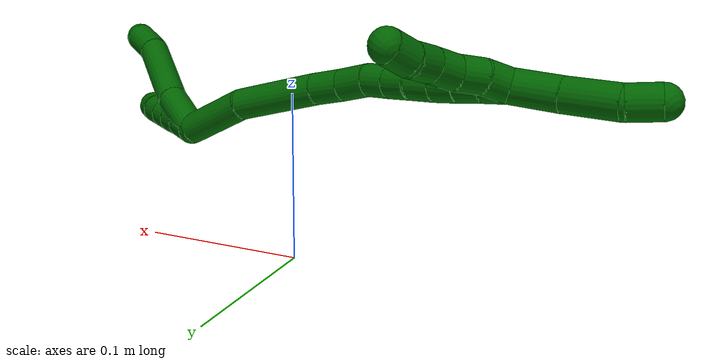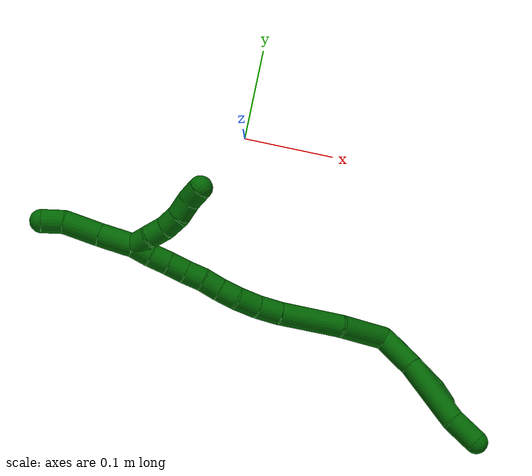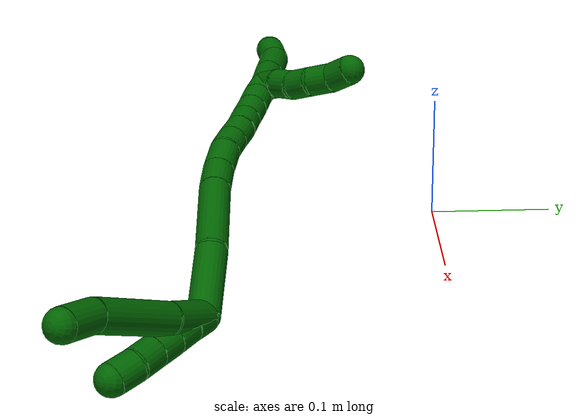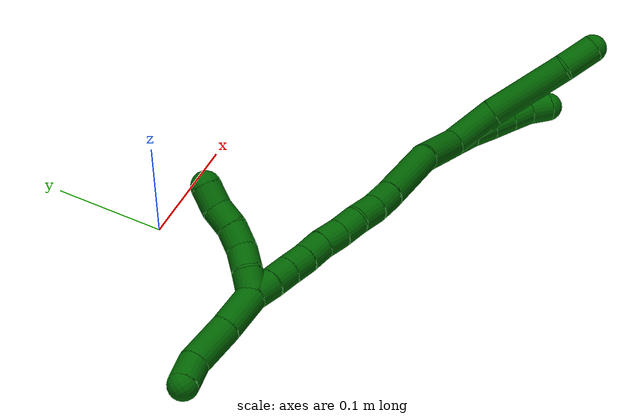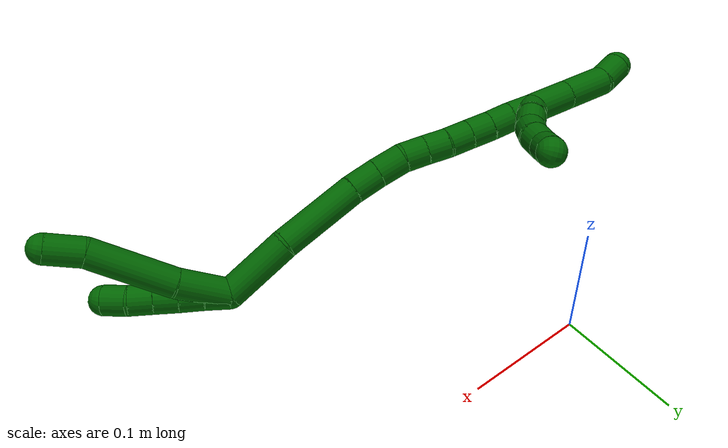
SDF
<sdf version="1.7">
 <world name="default">
  <model name="photoneo_s_sensor">
   <static>1</static>
   <pose>0 0 2 1.57079 1.57079 3.14159</pose>
   <link name="link">
    <inertial><mass>0.1</mass></inertial>
    <sensor name="sensor" type="depth">
     <update_rate>30</update_rate>
     <camera>
      <horizontal_fov>1.22</horizontal_fov>
      <image><width>1920</width><height>1200</height><format>B8G8R8</format></image>
      <clip><near>0.1</near><far>4</far></clip>
      <depth_camera><output>points</output></depth_camera>
     </camera>
     <plugin name="camera_plugin" filename="libgazebo_ros_depth_camera.so">
      <baseline>0.2</baseline>
      <alwaysOn>1</alwaysOn>
      <updateRate>0.0</updateRate>
      <cameraName>camera_ir</cameraName>
      <imageTopicName>/camera/color/image_raw</imageTopicName>
      <cameraInfoTopicName>/camera/color/camera_info</cameraInfoTopicName>
      <depthImageTopicName>/camera/depth/image_raw</depthImageTopicName>
      <depthImageCameraInfoTopicName>/camera/depth/camera_info</depthImageCameraInfoTopicName>
      <pointCloudTopicName>/camera/depth/points</pointCloudTopicName>
      <frameName>fr_optical</frameName>
      <pointCloudCutoff>0.1</pointCloudCutoff>
      <pointCloudCutoffMax>2.0</pointCloudCutoffMax>
      <distortionK1>0</distortionK1>
      <distortionK2>0</distortionK2>
      <distortionK3>0</distortionK3>
      <distortionT1>0</distortionT1>
      <distortionT2>0</distortionT2>
      <CxPrime>0</CxPrime>
      <Cx>0</Cx>
      <Cy>0</Cy>
      <focalLength>0</focalLength>
      <hackBaseline>0</hackBaseline>
     </plugin>
    </sensor>
   </link>
  </model>
  <model name="bin">
   <static>1</static>
   <link name="bottom">
    <collision name="collision-bottom">
     <pose>0 0 -0.01 0 -0 0</pose>
     <geometry><box><size>0.8 0.6 0.02</size></box></geometry>
     <surface>
      <friction><ode><mu>100</mu><mu2>100</mu2></ode></friction>
      <contact><collide_bitmask>65535</collide_bitmask></contact>
     </surface>
    </collision>
   </link>
   <link name="west_wall">
    <collision name="collision-west_wall">
     <pose>-0.41 0 0.1 0 -0 0</pose>
     <geometry><box><size>0.02 0.6 0.2</size></box></geometry>
     <surface>
      <friction><ode><mu>100</mu><mu2>100</mu2></ode></friction>
      <contact><collide_bitmask>65535</collide_bitmask></contact>
     </surface>
    </collision>
   </link>
   <link name="east_wall">
    <collision name="collision-east_wall">
     <pose>0.41 0 0.1 0 -0 0</pose>
     <geometry><box><size>0.02 0.6 0.2</size></box></geometry>
     <surface>
      <friction><ode><mu>100</mu><mu2>100</mu2></ode></friction>
      <contact><collide_bitmask>65535</collide_bitmask></contact>
     </surface>
    </collision>
   </link>
   <link name="south_wall">
    <collision name="collision-south_wall">
     <pose>0 -0.31 0.1 0 -0 0</pose>
     <geometry><box><size>0.8 0.02 0.2</size></box></geometry>
     <surface>
      <friction><ode><mu>100</mu><mu2>100</mu2></ode></friction>
      <contact><collide_bitmask>65535</collide_bitmask></contact>
     </surface>
    </collision>
   </link>
   <link name="north_wall">
    <collision name="collision-north_wall">
     <pose>0 0.31 0.1 0 -0 0</pose>
     <geometry><box><size>0.8 0.02 0.2</size></box></geometry>
     <surface>
      <friction><ode><mu>100</mu><mu2>100</mu2></ode></friction>
      <contact><collide_bitmask>65535</collide_bitmask></contact>
     </surface>
    </collision>
   </link>
  </model>
  <model name="6">
   <static>0</static>
   <link name="6">
    <collision name="collision-cylinder-e_1_2_8">
     <pose>0.000222 0.001659 0.022139 -0.074799 0.010002 -0.000374</pose>
     <geometry><cylinder><radius>0.0125</radius><length>0.044405</length></cylinder></geometry>
     <surface>
      <friction><ode><mu>1.16</mu><mu2>1.16</mu2><slip1>0</slip1><slip2>0</slip2></ode></friction>
      <contact><ode><kp>1e+06</kp><kd>1</kd><max_vel>0</max_vel><min_depth>0.001</min_depth></ode></contact>
     </surface>
    </collision>
    <visual name="visual-cylinder-e_1_2_8">
     <pose>0.000222 0.001659 0.022139 -0.074799 0.010002 -0.000374</pose>
     <geometry><cylinder><radius>0.0125</radius><length>0.044405</length></cylinder></geometry>
     <material><ambient>0 0.392157 0.003922 1</ambient></material>
    </visual>
    <collision name="collision-cylinder-e_2_8_9">
     <pose>-0.004356 0.004213 0.080728 -0.024549 -0.130896 0.001609</pose>
     <geometry><cylinder><radius>0.0125</radius><length>0.07355</length></cylinder></geometry>
     <surface>
      <friction><ode><mu>1.16</mu><mu2>1.16</mu2><slip1>0</slip1><slip2>0</slip2></ode></friction>
      <contact><ode><kp>1e+06</kp><kd>1</kd><max_vel>0</max_vel><min_depth>0.001</min_depth></ode></contact>
     </surface>
    </collision>
    <visual name="visual-cylinder-e_2_8_9">
     <pose>-0.004356 0.004213 0.080728 -0.024549 -0.130896 0.001609</pose>
     <geometry><cylinder><radius>0.0125</radius><length>0.07355</length></cylinder></geometry>
     <material><ambient>0 0.392157 0.003922 1</ambient></material>
    </visual>
    <collision name="collision-cylinder-e_3_9_6">
     <pose>-0.007369 0.004407 0.133084 0.044017 0.111745 0.002462</pose>
     <geometry><cylinder><radius>0.0125</radius><length>0.032045</length></cylinder></geometry>
     <surface>
      <friction><ode><mu>1.16</mu><mu2>1.16</mu2><slip1>0</slip1><slip2>0</slip2></ode></friction>
      <contact><ode><kp>1e+06</kp><kd>1</kd><max_vel>0</max_vel><min_depth>0.001</min_depth></ode></contact>
     </surface>
    </collision>
    <visual name="visual-cylinder-e_3_9_6">
     <pose>-0.007369 0.004407 0.133084 0.044017 0.111745 0.002462</pose>
     <geometry><cylinder><radius>0.0125</radius><length>0.032045</length></cylinder></geometry>
     <material><ambient>0 0.392157 0.003922 1</ambient></material>
    </visual>
    <collision name="collision-cylinder-e_1_2_10">
     <pose>0.002121 -0.001862 0.009594 0.191659 0.213682 0.020618</pose>
     <geometry><cylinder><radius>0.0125</radius><length>0.02</length></cylinder></geometry>
     <surface>
      <friction><ode><mu>1.16</mu><mu2>1.16</mu2><slip1>0</slip1><slip2>0</slip2></ode></friction>
      <contact><ode><kp>1e+06</kp><kd>1</kd><max_vel>0</max_vel><min_depth>0.001</min_depth></ode></contact>
     </surface>
    </collision>
    <visual name="visual-cylinder-e_1_2_10">
     <pose>0.002121 -0.001862 0.009594 0.191659 0.213682 0.020618</pose>
     <geometry><cylinder><radius>0.0125</radius><length>0.02</length></cylinder></geometry>
     <material><ambient>0 0.392157 0.003922 1</ambient></material>
    </visual>
    <collision name="collision-cylinder-e_2_10_11">
     <pose>0.006525 -0.006727 0.028448 0.313638 0.230423 0.036592</pose>
     <geometry><cylinder><radius>0.0125</radius><length>0.02</length></cylinder></geometry>
     <surface>
      <friction><ode><mu>1.16</mu><mu2>1.16</mu2><slip1>0</slip1><slip2>0</slip2></ode></friction>
      <contact><ode><kp>1e+06</kp><kd>1</kd><max_vel>0</max_vel><min_depth>0.001</min_depth></ode></contact>
     </surface>
    </collision>
    <visual name="visual-cylinder-e_2_10_11">
     <pose>0.006525 -0.006727 0.028448 0.313638 0.230423 0.036592</pose>
     <geometry><cylinder><radius>0.0125</radius><length>0.02</length></cylinder></geometry>
     <material><ambient>0 0.392157 0.003922 1</ambient></material>
    </visual>
    <collision name="collision-cylinder-e_3_11_12">
     <pose>0.010922 -0.012443 0.047099 0.281188 0.21289 0.030242</pose>
     <geometry><cylinder><radius>0.0125</radius><length>0.02</length></cylinder></geometry>
     <surface>
      <friction><ode><mu>1.16</mu><mu2>1.16</mu2><slip1>0</slip1><slip2>0</slip2></ode></friction>
      <contact><ode><kp>1e+06</kp><kd>1</kd><max_vel>0</max_vel><min_depth>0.001</min_depth></ode></contact>
     </surface>
    </collision>
    <visual name="visual-cylinder-e_3_11_12">
     <pose>0.010922 -0.012443 0.047099 0.281188 0.21289 0.030242</pose>
     <geometry><cylinder><radius>0.0125</radius><length>0.02</length></cylinder></geometry>
     <material><ambient>0 0.392157 0.003922 1</ambient></material>
    </visual>
    <collision name="collision-cylinder-e_4_12_13">
     <pose>0.015192 -0.017948 0.065846 0.290077 0.217402 0.031878</pose>
     <geometry><cylinder><radius>0.0125</radius><length>0.02</length></cylinder></geometry>
     <surface>
      <friction><ode><mu>1.16</mu><mu2>1.16</mu2><slip1>0</slip1><slip2>0</slip2></ode></friction>
      <contact><ode><kp>1e+06</kp><kd>1</kd><max_vel>0</max_vel><min_depth>0.001</min_depth></ode></contact>
     </surface>
    </collision>
    <visual name="visual-cylinder-e_4_12_13">
     <pose>0.015192 -0.017948 0.065846 0.290077 0.217402 0.031878</pose>
     <geometry><cylinder><radius>0.0125</radius><length>0.02</length></cylinder></geometry>
     <material><ambient>0 0.392157 0.003922 1</ambient></material>
    </visual>
    <collision name="collision-cylinder-e_5_13_5">
     <pose>0.018344 -0.025119 0.084138 0.455617 0.099694 0.023131</pose>
     <geometry><cylinder><radius>0.0125</radius><length>0.02</length></cylinder></geometry>
     <surface>
      <friction><ode><mu>1.16</mu><mu2>1.16</mu2><slip1>0</slip1><slip2>0</slip2></ode></friction>
      <contact><ode><kp>1e+06</kp><kd>1</kd><max_vel>0</max_vel><min_depth>0.001</min_depth></ode></contact>
     </surface>
    </collision>
    <visual name="visual-cylinder-e_5_13_5">
     <pose>0.018344 -0.025119 0.084138 0.455617 0.099694 0.023131</pose>
     <geometry><cylinder><radius>0.0125</radius><length>0.02</length></cylinder></geometry>
     <material><ambient>0 0.392157 0.003922 1</ambient></material>
    </visual>
    <collision name="collision-cylinder-e_1_2_14">
     <pose>-0.022036 0.010425 -0.016333 -2.57351 -0.849529 1.99526</pose>
     <geometry><cylinder><radius>0.0125</radius><length>0.058688</length></cylinder></geometry>
     <surface>
      <friction><ode><mu>1.16</mu><mu2>1.16</mu2><slip1>0</slip1><slip2>0</slip2></ode></friction>
      <contact><ode><kp>1e+06</kp><kd>1</kd><max_vel>0</max_vel><min_depth>0.001</min_depth></ode></contact>
     </surface>
    </collision>
    <visual name="visual-cylinder-e_1_2_14">
     <pose>-0.022036 0.010425 -0.016333 -2.57351 -0.849529 1.99526</pose>
     <geometry><cylinder><radius>0.0125</radius><length>0.058688</length></cylinder></geometry>
     <material><ambient>0 0.392157 0.003922 1</ambient></material>
    </visual>
    <collision name="collision-cylinder-e_2_14_15">
     <pose>-0.07054 0.026243 -0.055606 -2.91071 -0.843351 2.63567</pose>
     <geometry><cylinder><radius>0.0125</radius><length>0.070874</length></cylinder></geometry>
     <surface>
      <friction><ode><mu>1.16</mu><mu2>1.16</mu2><slip1>0</slip1><slip2>0</slip2></ode></friction>
      <contact><ode><kp>1e+06</kp><kd>1</kd><max_vel>0</max_vel><min_depth>0.001</min_depth></ode></contact>
     </surface>
    </collision>
    <visual name="visual-cylinder-e_2_14_15">
     <pose>-0.07054 0.026243 -0.055606 -2.91071 -0.843351 2.63567</pose>
     <geometry><cylinder><radius>0.0125</radius><length>0.070874</length></cylinder></geometry>
     <material><ambient>0 0.392157 0.003922 1</ambient></material>
    </visual>
    <collision name="collision-cylinder-e_3_15_16">
     <pose>-0.105611 0.033757 -0.087417 -2.90683 -0.756217 2.56442</pose>
     <geometry><cylinder><radius>0.0125</radius><length>0.025079</length></cylinder></geometry>
     <surface>
      <friction><ode><mu>1.16</mu><mu2>1.16</mu2><slip1>0</slip1><slip2>0</slip2></ode></friction>
      <contact><ode><kp>1e+06</kp><kd>1</kd><max_vel>0</max_vel><min_depth>0.001</min_depth></ode></contact>
     </surface>
    </collision>
    <visual name="visual-cylinder-e_3_15_16">
     <pose>-0.105611 0.033757 -0.087417 -2.90683 -0.756217 2.56442</pose>
     <geometry><cylinder><radius>0.0125</radius><length>0.025079</length></cylinder></geometry>
     <material><ambient>0 0.392157 0.003922 1</ambient></material>
    </visual>
    <collision name="collision-cylinder-e_4_16_17">
     <pose>-0.12207 0.039141 -0.105274 -2.79338 -0.687821 2.22858</pose>
     <geometry><cylinder><radius>0.0125</radius><length>0.024744</length></cylinder></geometry>
     <surface>
      <friction><ode><mu>1.16</mu><mu2>1.16</mu2><slip1>0</slip1><slip2>0</slip2></ode></friction>
      <contact><ode><kp>1e+06</kp><kd>1</kd><max_vel>0</max_vel><min_depth>0.001</min_depth></ode></contact>
     </surface>
    </collision>
    <visual name="visual-cylinder-e_4_16_17">
     <pose>-0.12207 0.039141 -0.105274 -2.79338 -0.687821 2.22858</pose>
     <geometry><cylinder><radius>0.0125</radius><length>0.024744</length></cylinder></geometry>
     <material><ambient>0 0.392157 0.003922 1</ambient></material>
    </visual>
    <collision name="collision-cylinder-e_5_17_18">
     <pose>-0.134982 0.043808 -0.12292 -2.98068 -0.522813 2.55615</pose>
     <geometry><cylinder><radius>0.0125</radius><length>0.020254</length></cylinder></geometry>
     <surface>
      <friction><ode><mu>1.16</mu><mu2>1.16</mu2><slip1>0</slip1><slip2>0</slip2></ode></friction>
      <contact><ode><kp>1e+06</kp><kd>1</kd><max_vel>0</max_vel><min_depth>0.001</min_depth></ode></contact>
     </surface>
    </collision>
    <visual name="visual-cylinder-e_5_17_18">
     <pose>-0.134982 0.043808 -0.12292 -2.98068 -0.522813 2.55615</pose>
     <geometry><cylinder><radius>0.0125</radius><length>0.020254</length></cylinder></geometry>
     <material><ambient>0 0.392157 0.003922 1</ambient></material>
    </visual>
    <collision name="collision-cylinder-e_6_18_19">
     <pose>-0.144711 0.047343 -0.140225 -2.90009 -0.483335 2.22669</pose>
     <geometry><cylinder><radius>0.0125</radius><length>0.020108</length></cylinder></geometry>
     <surface>
      <friction><ode><mu>1.16</mu><mu2>1.16</mu2><slip1>0</slip1><slip2>0</slip2></ode></friction>
      <contact><ode><kp>1e+06</kp><kd>1</kd><max_vel>0</max_vel><min_depth>0.001</min_depth></ode></contact>
     </surface>
    </collision>
    <visual name="visual-cylinder-e_6_18_19">
     <pose>-0.144711 0.047343 -0.140225 -2.90009 -0.483335 2.22669</pose>
     <geometry><cylinder><radius>0.0125</radius><length>0.020108</length></cylinder></geometry>
     <material><ambient>0 0.392157 0.003922 1</ambient></material>
    </visual>
    <collision name="collision-cylinder-e_7_19_20">
     <pose>-0.154868 0.050519 -0.157287 -3.01779 -0.574018 2.72764</pose>
     <geometry><cylinder><radius>0.0125</radius><length>0.020203</length></cylinder></geometry>
     <surface>
      <friction><ode><mu>1.16</mu><mu2>1.16</mu2><slip1>0</slip1><slip2>0</slip2></ode></friction>
      <contact><ode><kp>1e+06</kp><kd>1</kd><max_vel>0</max_vel><min_depth>0.001</min_depth></ode></contact>
     </surface>
    </collision>
    <visual name="visual-cylinder-e_7_19_20">
     <pose>-0.154868 0.050519 -0.157287 -3.01779 -0.574018 2.72764</pose>
     <geometry><cylinder><radius>0.0125</radius><length>0.020203</length></cylinder></geometry>
     <material><ambient>0 0.392157 0.003922 1</ambient></material>
    </visual>
    <collision name="collision-cylinder-e_8_20_21">
     <pose>-0.16559 0.05341 -0.174039 -2.924 -0.550249 2.4032</pose>
     <geometry><cylinder><radius>0.0125</radius><length>0.020027</length></cylinder></geometry>
     <surface>
      <friction><ode><mu>1.16</mu><mu2>1.16</mu2><slip1>0</slip1><slip2>0</slip2></ode></friction>
      <contact><ode><kp>1e+06</kp><kd>1</kd><max_vel>0</max_vel><min_depth>0.001</min_depth></ode></contact>
     </surface>
    </collision>
    <visual name="visual-cylinder-e_8_20_21">
     <pose>-0.16559 0.05341 -0.174039 -2.924 -0.550249 2.4032</pose>
     <geometry><cylinder><radius>0.0125</radius><length>0.020027</length></cylinder></geometry>
     <material><ambient>0 0.392157 0.003922 1</ambient></material>
    </visual>
    <collision name="collision-cylinder-e_9_21_22">
     <pose>-0.176445 0.057027 -0.190464 -2.92571 -0.596054 2.46332</pose>
     <geometry><cylinder><radius>0.0125</radius><length>0.020019</length></cylinder></geometry>
     <surface>
      <friction><ode><mu>1.16</mu><mu2>1.16</mu2><slip1>0</slip1><slip2>0</slip2></ode></friction>
      <contact><ode><kp>1e+06</kp><kd>1</kd><max_vel>0</max_vel><min_depth>0.001</min_depth></ode></contact>
     </surface>
    </collision>
    <visual name="visual-cylinder-e_9_21_22">
     <pose>-0.176445 0.057027 -0.190464 -2.92571 -0.596054 2.46332</pose>
     <geometry><cylinder><radius>0.0125</radius><length>0.020019</length></cylinder></geometry>
     <material><ambient>0 0.392157 0.003922 1</ambient></material>
    </visual>
    <collision name="collision-cylinder-e_10_22_1">
     <pose>-0.187059 0.060922 -0.206957 -2.89432 -0.522917 2.27205</pose>
     <geometry><cylinder><radius>0.0125</radius><length>0.020002</length></cylinder></geometry>
     <surface>
      <friction><ode><mu>1.16</mu><mu2>1.16</mu2><slip1>0</slip1><slip2>0</slip2></ode></friction>
      <contact><ode><kp>1e+06</kp><kd>1</kd><max_vel>0</max_vel><min_depth>0.001</min_depth></ode></contact>
     </surface>
    </collision>
    <visual name="visual-cylinder-e_10_22_1">
     <pose>-0.187059 0.060922 -0.206957 -2.89432 -0.522917 2.27205</pose>
     <geometry><cylinder><radius>0.0125</radius><length>0.020002</length></cylinder></geometry>
     <material><ambient>0 0.392157 0.003922 1</ambient></material>
    </visual>
    <collision name="collision-cylinder-e_1_1_23">
     <pose>-0.202366 0.062071 -0.230638 3.07813 -0.592746 -2.93443</pose>
     <geometry><cylinder><radius>0.0125</radius><length>0.03692</length></cylinder></geometry>
     <surface>
      <friction><ode><mu>1.16</mu><mu2>1.16</mu2><slip1>0</slip1><slip2>0</slip2></ode></friction>
      <contact><ode><kp>1e+06</kp><kd>1</kd><max_vel>0</max_vel><min_depth>0.001</min_depth></ode></contact>
     </surface>
    </collision>
    <visual name="visual-cylinder-e_1_1_23">
     <pose>-0.202366 0.062071 -0.230638 3.07813 -0.592746 -2.93443</pose>
     <geometry><cylinder><radius>0.0125</radius><length>0.03692</length></cylinder></geometry>
     <material><ambient>0 0.392157 0.003922 1</ambient></material>
    </visual>
    <collision name="collision-cylinder-e_2_23_24">
     <pose>-0.223677 0.061214 -0.262389 -3.13468 -0.588738 3.1188</pose>
     <geometry><cylinder><radius>0.0125</radius><length>0.039611</length></cylinder></geometry>
     <surface>
      <friction><ode><mu>1.16</mu><mu2>1.16</mu2><slip1>0</slip1><slip2>0</slip2></ode></friction>
      <contact><ode><kp>1e+06</kp><kd>1</kd><max_vel>0</max_vel><min_depth>0.001</min_depth></ode></contact>
     </surface>
    </collision>
    <visual name="visual-cylinder-e_2_23_24">
     <pose>-0.223677 0.061214 -0.262389 -3.13468 -0.588738 3.1188</pose>
     <geometry><cylinder><radius>0.0125</radius><length>0.039611</length></cylinder></geometry>
     <material><ambient>0 0.392157 0.003922 1</ambient></material>
    </visual>
    <collision name="collision-cylinder-e_3_24_4">
     <pose>-0.243734 0.060071 -0.286212 2.97222 -0.881923 -2.78566</pose>
     <geometry><cylinder><radius>0.0125</radius><length>0.023469</length></cylinder></geometry>
     <surface>
      <friction><ode><mu>1.16</mu><mu2>1.16</mu2><slip1>0</slip1><slip2>0</slip2></ode></friction>
      <contact><ode><kp>1e+06</kp><kd>1</kd><max_vel>0</max_vel><min_depth>0.001</min_depth></ode></contact>
     </surface>
    </collision>
    <visual name="visual-cylinder-e_3_24_4">
     <pose>-0.243734 0.060071 -0.286212 2.97222 -0.881923 -2.78566</pose>
     <geometry><cylinder><radius>0.0125</radius><length>0.023469</length></cylinder></geometry>
     <material><ambient>0 0.392157 0.003922 1</ambient></material>
    </visual>
    <collision name="collision-cylinder-e_1_1_25">
     <pose>-0.185839 0.070127 -0.212012 -1.12962 0.670573 -0.434621</pose>
     <geometry><cylinder><radius>0.0125</radius><length>0.02</length></cylinder></geometry>
     <surface>
      <friction><ode><mu>1.16</mu><mu2>1.16</mu2><slip1>0</slip1><slip2>0</slip2></ode></friction>
      <contact><ode><kp>1e+06</kp><kd>1</kd><max_vel>0</max_vel><min_depth>0.001</min_depth></ode></contact>
     </surface>
    </collision>
    <visual name="visual-cylinder-e_1_1_25">
     <pose>-0.185839 0.070127 -0.212012 -1.12962 0.670573 -0.434621</pose>
     <geometry><cylinder><radius>0.0125</radius><length>0.02</length></cylinder></geometry>
     <material><ambient>0 0.392157 0.003922 1</ambient></material>
    </visual>
    <collision name="collision-cylinder-e_2_25_26">
     <pose>-0.172033 0.083088 -0.205868 -1.12624 0.862052 -0.565095</pose>
     <geometry><cylinder><radius>0.0125</radius><length>0.02</length></cylinder></geometry>
     <surface>
      <friction><ode><mu>1.16</mu><mu2>1.16</mu2><slip1>0</slip1><slip2>0</slip2></ode></friction>
      <contact><ode><kp>1e+06</kp><kd>1</kd><max_vel>0</max_vel><min_depth>0.001</min_depth></ode></contact>
     </surface>
    </collision>
    <visual name="visual-cylinder-e_2_25_26">
     <pose>-0.172033 0.083088 -0.205868 -1.12624 0.862052 -0.565095</pose>
     <geometry><cylinder><radius>0.0125</radius><length>0.02</length></cylinder></geometry>
     <material><ambient>0 0.392157 0.003922 1</ambient></material>
    </visual>
    <collision name="collision-cylinder-e_3_26_27">
     <pose>-0.158248 0.096678 -0.201606 -1.38337 0.667854 -0.559547</pose>
     <geometry><cylinder><radius>0.0125</radius><length>0.02</length></cylinder></geometry>
     <surface>
      <friction><ode><mu>1.16</mu><mu2>1.16</mu2><slip1>0</slip1><slip2>0</slip2></ode></friction>
      <contact><ode><kp>1e+06</kp><kd>1</kd><max_vel>0</max_vel><min_depth>0.001</min_depth></ode></contact>
     </surface>
    </collision>
    <visual name="visual-cylinder-e_3_26_27">
     <pose>-0.158248 0.096678 -0.201606 -1.38337 0.667854 -0.559547</pose>
     <geometry><cylinder><radius>0.0125</radius><length>0.02</length></cylinder></geometry>
     <material><ambient>0 0.392157 0.003922 1</ambient></material>
    </visual>
    <collision name="collision-cylinder-e_4_27_28">
     <pose>-0.146038 0.112326 -0.201055 -1.68532 0.645696 -0.717965</pose>
     <geometry><cylinder><radius>0.0125</radius><length>0.02</length></cylinder></geometry>
     <surface>
      <friction><ode><mu>1.16</mu><mu2>1.16</mu2><slip1>0</slip1><slip2>0</slip2></ode></friction>
      <contact><ode><kp>1e+06</kp><kd>1</kd><max_vel>0</max_vel><min_depth>0.001</min_depth></ode></contact>
     </surface>
    </collision>
    <visual name="visual-cylinder-e_4_27_28">
     <pose>-0.146038 0.112326 -0.201055 -1.68532 0.645696 -0.717965</pose>
     <geometry><cylinder><radius>0.0125</radius><length>0.02</length></cylinder></geometry>
     <material><ambient>0 0.392157 0.003922 1</ambient></material>
    </visual>
    <collision name="collision-cylinder-e_5_28_3">
     <pose>-0.135256 0.128957 -0.200669 -1.42256 0.496558 -0.43017</pose>
     <geometry><cylinder><radius>0.0125</radius><length>0.02</length></cylinder></geometry>
     <surface>
      <friction><ode><mu>1.16</mu><mu2>1.16</mu2><slip1>0</slip1><slip2>0</slip2></ode></friction>
      <contact><ode><kp>1e+06</kp><kd>1</kd><max_vel>0</max_vel><min_depth>0.001</min_depth></ode></contact>
     </surface>
    </collision>
    <visual name="visual-cylinder-e_5_28_3">
     <pose>-0.135256 0.128957 -0.200669 -1.42256 0.496558 -0.43017</pose>
     <geometry><cylinder><radius>0.0125</radius><length>0.02</length></cylinder></geometry>
     <material><ambient>0 0.392157 0.003922 1</ambient></material>
    </visual>
    <collision name="collision-sphere-3">
     <pose>-0.130492 0.137653 -0.199371 0 -0 0</pose>
     <geometry><sphere><radius>0.0125</radius></sphere></geometry>
     <surface>
      <friction><ode><mu>1.16</mu><mu2>1.16</mu2><slip1>0</slip1><slip2>0</slip2></ode></friction>
      <contact><ode><kp>1e+06</kp><kd>1</kd><max_vel>0</max_vel><min_depth>0.001</min_depth></ode></contact>
     </surface>
    </collision>
    <visual name="visual-sphere-3">
     <pose>-0.130492 0.137653 -0.199371 0 -0 0</pose>
     <geometry><sphere><radius>0.0125</radius></sphere></geometry>
     <material><ambient>0 0.392157 0.003922 1</ambient></material>
    </visual>
    <collision name="collision-sphere-28">
     <pose>-0.14002 0.120261 -0.201968 0 -0 0</pose>
     <geometry><sphere><radius>0.0125</radius></sphere></geometry>
     <surface>
      <friction><ode><mu>1.16</mu><mu2>1.16</mu2><slip1>0</slip1><slip2>0</slip2></ode></friction>
      <contact><ode><kp>1e+06</kp><kd>1</kd><max_vel>0</max_vel><min_depth>0.001</min_depth></ode></contact>
     </surface>
    </collision>
    <visual name="visual-sphere-28">
     <pose>-0.14002 0.120261 -0.201968 0 -0 0</pose>
     <geometry><sphere><radius>0.0125</radius></sphere></geometry>
     <material><ambient>0 0.392157 0.003922 1</ambient></material>
    </visual>
    <collision name="collision-sphere-27">
     <pose>-0.152055 0.104392 -0.200143 0 -0 0</pose>
     <geometry><sphere><radius>0.0125</radius></sphere></geometry>
     <surface>
      <friction><ode><mu>1.16</mu><mu2>1.16</mu2><slip1>0</slip1><slip2>0</slip2></ode></friction>
      <contact><ode><kp>1e+06</kp><kd>1</kd><max_vel>0</max_vel><min_depth>0.001</min_depth></ode></contact>
     </surface>
    </collision>
    <visual name="visual-sphere-27">
     <pose>-0.152055 0.104392 -0.200143 0 -0 0</pose>
     <geometry><sphere><radius>0.0125</radius></sphere></geometry>
     <material><ambient>0 0.392157 0.003922 1</ambient></material>
    </visual>
    <collision name="collision-sphere-26">
     <pose>-0.164441 0.088964 -0.203068 0 -0 0</pose>
     <geometry><sphere><radius>0.0125</radius></sphere></geometry>
     <surface>
      <friction><ode><mu>1.16</mu><mu2>1.16</mu2><slip1>0</slip1><slip2>0</slip2></ode></friction>
      <contact><ode><kp>1e+06</kp><kd>1</kd><max_vel>0</max_vel><min_depth>0.001</min_depth></ode></contact>
     </surface>
    </collision>
    <visual name="visual-sphere-26">
     <pose>-0.164441 0.088964 -0.203068 0 -0 0</pose>
     <geometry><sphere><radius>0.0125</radius></sphere></geometry>
     <material><ambient>0 0.392157 0.003922 1</ambient></material>
    </visual>
    <collision name="collision-sphere-25">
     <pose>-0.179625 0.077211 -0.208667 0 -0 0</pose>
     <geometry><sphere><radius>0.0125</radius></sphere></geometry>
     <surface>
      <friction><ode><mu>1.16</mu><mu2>1.16</mu2><slip1>0</slip1><slip2>0</slip2></ode></friction>
      <contact><ode><kp>1e+06</kp><kd>1</kd><max_vel>0</max_vel><min_depth>0.001</min_depth></ode></contact>
     </surface>
    </collision>
    <visual name="visual-sphere-25">
     <pose>-0.179625 0.077211 -0.208667 0 -0 0</pose>
     <geometry><sphere><radius>0.0125</radius></sphere></geometry>
     <material><ambient>0 0.392157 0.003922 1</ambient></material>
    </visual>
    <collision name="collision-sphere-4">
     <pose>-0.252792 0.058813 -0.293564 0 -0 0</pose>
     <geometry><sphere><radius>0.0125</radius></sphere></geometry>
     <surface>
      <friction><ode><mu>1.16</mu><mu2>1.16</mu2><slip1>0</slip1><slip2>0</slip2></ode></friction>
      <contact><ode><kp>1e+06</kp><kd>1</kd><max_vel>0</max_vel><min_depth>0.001</min_depth></ode></contact>
     </surface>
    </collision>
    <visual name="visual-sphere-4">
     <pose>-0.252792 0.058813 -0.293564 0 -0 0</pose>
     <geometry><sphere><radius>0.0125</radius></sphere></geometry>
     <material><ambient>0 0.392157 0.003922 1</ambient></material>
    </visual>
    <collision name="collision-sphere-24">
     <pose>-0.234675 0.061328 -0.278859 0 -0 0</pose>
     <geometry><sphere><radius>0.0125</radius></sphere></geometry>
     <surface>
      <friction><ode><mu>1.16</mu><mu2>1.16</mu2><slip1>0</slip1><slip2>0</slip2></ode></friction>
      <contact><ode><kp>1e+06</kp><kd>1</kd><max_vel>0</max_vel><min_depth>0.001</min_depth></ode></contact>
     </surface>
    </collision>
    <visual name="visual-sphere-24">
     <pose>-0.234675 0.061328 -0.278859 0 -0 0</pose>
     <geometry><sphere><radius>0.0125</radius></sphere></geometry>
     <material><ambient>0 0.392157 0.003922 1</ambient></material>
    </visual>
    <collision name="collision-sphere-23">
     <pose>-0.212679 0.0611 -0.245918 0 -0 0</pose>
     <geometry><sphere><radius>0.0125</radius></sphere></geometry>
     <surface>
      <friction><ode><mu>1.16</mu><mu2>1.16</mu2><slip1>0</slip1><slip2>0</slip2></ode></friction>
      <contact><ode><kp>1e+06</kp><kd>1</kd><max_vel>0</max_vel><min_depth>0.001</min_depth></ode></contact>
     </surface>
    </collision>
    <visual name="visual-sphere-23">
     <pose>-0.212679 0.0611 -0.245918 0 -0 0</pose>
     <geometry><sphere><radius>0.0125</radius></sphere></geometry>
     <material><ambient>0 0.392157 0.003922 1</ambient></material>
    </visual>
    <collision name="collision-sphere-1">
     <pose>-0.192054 0.063042 -0.215358 0 -0 0</pose>
     <geometry><sphere><radius>0.0125</radius></sphere></geometry>
     <surface>
      <friction><ode><mu>1.16</mu><mu2>1.16</mu2><slip1>0</slip1><slip2>0</slip2></ode></friction>
      <contact><ode><kp>1e+06</kp><kd>1</kd><max_vel>0</max_vel><min_depth>0.001</min_depth></ode></contact>
     </surface>
    </collision>
    <visual name="visual-sphere-1">
     <pose>-0.192054 0.063042 -0.215358 0 -0 0</pose>
     <geometry><sphere><radius>0.0125</radius></sphere></geometry>
     <material><ambient>0 0.392157 0.003922 1</ambient></material>
    </visual>
    <collision name="collision-sphere-22">
     <pose>-0.182064 0.058801 -0.198556 0 -0 0</pose>
     <geometry><sphere><radius>0.0125</radius></sphere></geometry>
     <surface>
      <friction><ode><mu>1.16</mu><mu2>1.16</mu2><slip1>0</slip1><slip2>0</slip2></ode></friction>
      <contact><ode><kp>1e+06</kp><kd>1</kd><max_vel>0</max_vel><min_depth>0.001</min_depth></ode></contact>
     </surface>
    </collision>
    <visual name="visual-sphere-22">
     <pose>-0.182064 0.058801 -0.198556 0 -0 0</pose>
     <geometry><sphere><radius>0.0125</radius></sphere></geometry>
     <material><ambient>0 0.392157 0.003922 1</ambient></material>
    </visual>
    <collision name="collision-sphere-21">
     <pose>-0.170826 0.055252 -0.182373 0 -0 0</pose>
     <geometry><sphere><radius>0.0125</radius></sphere></geometry>
     <surface>
      <friction><ode><mu>1.16</mu><mu2>1.16</mu2><slip1>0</slip1><slip2>0</slip2></ode></friction>
      <contact><ode><kp>1e+06</kp><kd>1</kd><max_vel>0</max_vel><min_depth>0.001</min_depth></ode></contact>
     </surface>
    </collision>
    <visual name="visual-sphere-21">
     <pose>-0.170826 0.055252 -0.182373 0 -0 0</pose>
     <geometry><sphere><radius>0.0125</radius></sphere></geometry>
     <material><ambient>0 0.392157 0.003922 1</ambient></material>
    </visual>
    <collision name="collision-sphere-11">
     <pose>0.008809 -0.00973 0.037709 0 -0 0</pose>
     <geometry><sphere><radius>0.0125</radius></sphere></geometry>
     <surface>
      <friction><ode><mu>1.16</mu><mu2>1.16</mu2><slip1>0</slip1><slip2>0</slip2></ode></friction>
      <contact><ode><kp>1e+06</kp><kd>1</kd><max_vel>0</max_vel><min_depth>0.001</min_depth></ode></contact>
     </surface>
    </collision>
    <visual name="visual-sphere-11">
     <pose>0.008809 -0.00973 0.037709 0 -0 0</pose>
     <geometry><sphere><radius>0.0125</radius></sphere></geometry>
     <material><ambient>0 0.392157 0.003922 1</ambient></material>
    </visual>
    <collision name="collision-sphere-10">
     <pose>0.004241 -0.003723 0.019187 0 -0 0</pose>
     <geometry><sphere><radius>0.0125</radius></sphere></geometry>
     <surface>
      <friction><ode><mu>1.16</mu><mu2>1.16</mu2><slip1>0</slip1><slip2>0</slip2></ode></friction>
      <contact><ode><kp>1e+06</kp><kd>1</kd><max_vel>0</max_vel><min_depth>0.001</min_depth></ode></contact>
     </surface>
    </collision>
    <visual name="visual-sphere-10">
     <pose>0.004241 -0.003723 0.019187 0 -0 0</pose>
     <geometry><sphere><radius>0.0125</radius></sphere></geometry>
     <material><ambient>0 0.392157 0.003922 1</ambient></material>
    </visual>
    <collision name="collision-sphere-6">
     <pose>-0.005582 0.003707 0.148992 0 -0 0</pose>
     <geometry><sphere><radius>0.0125</radius></sphere></geometry>
     <surface>
      <friction><ode><mu>1.16</mu><mu2>1.16</mu2><slip1>0</slip1><slip2>0</slip2></ode></friction>
      <contact><ode><kp>1e+06</kp><kd>1</kd><max_vel>0</max_vel><min_depth>0.001</min_depth></ode></contact>
     </surface>
    </collision>
    <visual name="visual-sphere-6">
     <pose>-0.005582 0.003707 0.148992 0 -0 0</pose>
     <geometry><sphere><radius>0.0125</radius></sphere></geometry>
     <material><ambient>0 0.392157 0.003922 1</ambient></material>
    </visual>
    <collision name="collision-sphere-9">
     <pose>-0.009156 0.005108 0.117177 0 -0 0</pose>
     <geometry><sphere><radius>0.0125</radius></sphere></geometry>
     <surface>
      <friction><ode><mu>1.16</mu><mu2>1.16</mu2><slip1>0</slip1><slip2>0</slip2></ode></friction>
      <contact><ode><kp>1e+06</kp><kd>1</kd><max_vel>0</max_vel><min_depth>0.001</min_depth></ode></contact>
     </surface>
    </collision>
    <visual name="visual-sphere-9">
     <pose>-0.009156 0.005108 0.117177 0 -0 0</pose>
     <geometry><sphere><radius>0.0125</radius></sphere></geometry>
     <material><ambient>0 0.392157 0.003922 1</ambient></material>
    </visual>
    <collision name="collision-sphere-2">
     <geometry><sphere><radius>0.0125</radius></sphere></geometry>
     <surface>
      <friction><ode><mu>1.16</mu><mu2>1.16</mu2><slip1>0</slip1><slip2>0</slip2></ode></friction>
      <contact><ode><kp>1e+06</kp><kd>1</kd><max_vel>0</max_vel><min_depth>0.001</min_depth></ode></contact>
     </surface>
    </collision>
    <visual name="visual-sphere-2">
     <geometry><sphere><radius>0.0125</radius></sphere></geometry>
     <material><ambient>0 0.392157 0.003922 1</ambient></material>
    </visual>
    <collision name="collision-sphere-19">
     <pose>-0.149383 0.049472 -0.148869 0 -0 0</pose>
     <geometry><sphere><radius>0.0125</radius></sphere></geometry>
     <surface>
      <friction><ode><mu>1.16</mu><mu2>1.16</mu2><slip1>0</slip1><slip2>0</slip2></ode></friction>
      <contact><ode><kp>1e+06</kp><kd>1</kd><max_vel>0</max_vel><min_depth>0.001</min_depth></ode></contact>
     </surface>
    </collision>
    <visual name="visual-sphere-19">
     <pose>-0.149383 0.049472 -0.148869 0 -0 0</pose>
     <geometry><sphere><radius>0.0125</radius></sphere></geometry>
     <material><ambient>0 0.392157 0.003922 1</ambient></material>
    </visual>
    <collision name="collision-sphere-8">
     <pose>0.000444 0.003318 0.044278 0 -0 0</pose>
     <geometry><sphere><radius>0.0125</radius></sphere></geometry>
     <surface>
      <friction><ode><mu>1.16</mu><mu2>1.16</mu2><slip1>0</slip1><slip2>0</slip2></ode></friction>
      <contact><ode><kp>1e+06</kp><kd>1</kd><max_vel>0</max_vel><min_depth>0.001</min_depth></ode></contact>
     </surface>
    </collision>
    <visual name="visual-sphere-8">
     <pose>0.000444 0.003318 0.044278 0 -0 0</pose>
     <geometry><sphere><radius>0.0125</radius></sphere></geometry>
     <material><ambient>0 0.392157 0.003922 1</ambient></material>
    </visual>
    <collision name="collision-sphere-12">
     <pose>0.013035 -0.015155 0.05649 0 -0 0</pose>
     <geometry><sphere><radius>0.0125</radius></sphere></geometry>
     <surface>
      <friction><ode><mu>1.16</mu><mu2>1.16</mu2><slip1>0</slip1><slip2>0</slip2></ode></friction>
      <contact><ode><kp>1e+06</kp><kd>1</kd><max_vel>0</max_vel><min_depth>0.001</min_depth></ode></contact>
     </surface>
    </collision>
    <visual name="visual-sphere-12">
     <pose>0.013035 -0.015155 0.05649 0 -0 0</pose>
     <geometry><sphere><radius>0.0125</radius></sphere></geometry>
     <material><ambient>0 0.392157 0.003922 1</ambient></material>
    </visual>
    <collision name="collision-sphere-13">
     <pose>0.017349 -0.020741 0.075203 0 -0 0</pose>
     <geometry><sphere><radius>0.0125</radius></sphere></geometry>
     <surface>
      <friction><ode><mu>1.16</mu><mu2>1.16</mu2><slip1>0</slip1><slip2>0</slip2></ode></friction>
      <contact><ode><kp>1e+06</kp><kd>1</kd><max_vel>0</max_vel><min_depth>0.001</min_depth></ode></contact>
     </surface>
    </collision>
    <visual name="visual-sphere-13">
     <pose>0.017349 -0.020741 0.075203 0 -0 0</pose>
     <geometry><sphere><radius>0.0125</radius></sphere></geometry>
     <material><ambient>0 0.392157 0.003922 1</ambient></material>
    </visual>
    <collision name="collision-sphere-5">
     <pose>0.019339 -0.029498 0.093073 0 -0 0</pose>
     <geometry><sphere><radius>0.0125</radius></sphere></geometry>
     <surface>
      <friction><ode><mu>1.16</mu><mu2>1.16</mu2><slip1>0</slip1><slip2>0</slip2></ode></friction>
      <contact><ode><kp>1e+06</kp><kd>1</kd><max_vel>0</max_vel><min_depth>0.001</min_depth></ode></contact>
     </surface>
    </collision>
    <visual name="visual-sphere-5">
     <pose>0.019339 -0.029498 0.093073 0 -0 0</pose>
     <geometry><sphere><radius>0.0125</radius></sphere></geometry>
     <material><ambient>0 0.392157 0.003922 1</ambient></material>
    </visual>
    <collision name="collision-sphere-14">
     <pose>-0.044073 0.02085 -0.032667 0 -0 0</pose>
     <geometry><sphere><radius>0.0125</radius></sphere></geometry>
     <surface>
      <friction><ode><mu>1.16</mu><mu2>1.16</mu2><slip1>0</slip1><slip2>0</slip2></ode></friction>
      <contact><ode><kp>1e+06</kp><kd>1</kd><max_vel>0</max_vel><min_depth>0.001</min_depth></ode></contact>
     </surface>
    </collision>
    <visual name="visual-sphere-14">
     <pose>-0.044073 0.02085 -0.032667 0 -0 0</pose>
     <geometry><sphere><radius>0.0125</radius></sphere></geometry>
     <material><ambient>0 0.392157 0.003922 1</ambient></material>
    </visual>
    <collision name="collision-sphere-15">
     <pose>-0.097007 0.031635 -0.078545 0 -0 0</pose>
     <geometry><sphere><radius>0.0125</radius></sphere></geometry>
     <surface>
      <friction><ode><mu>1.16</mu><mu2>1.16</mu2><slip1>0</slip1><slip2>0</slip2></ode></friction>
      <contact><ode><kp>1e+06</kp><kd>1</kd><max_vel>0</max_vel><min_depth>0.001</min_depth></ode></contact>
     </surface>
    </collision>
    <visual name="visual-sphere-15">
     <pose>-0.097007 0.031635 -0.078545 0 -0 0</pose>
     <geometry><sphere><radius>0.0125</radius></sphere></geometry>
     <material><ambient>0 0.392157 0.003922 1</ambient></material>
    </visual>
    <collision name="collision-sphere-16">
     <pose>-0.114216 0.035879 -0.096288 0 -0 0</pose>
     <geometry><sphere><radius>0.0125</radius></sphere></geometry>
     <surface>
      <friction><ode><mu>1.16</mu><mu2>1.16</mu2><slip1>0</slip1><slip2>0</slip2></ode></friction>
      <contact><ode><kp>1e+06</kp><kd>1</kd><max_vel>0</max_vel><min_depth>0.001</min_depth></ode></contact>
     </surface>
    </collision>
    <visual name="visual-sphere-16">
     <pose>-0.114216 0.035879 -0.096288 0 -0 0</pose>
     <geometry><sphere><radius>0.0125</radius></sphere></geometry>
     <material><ambient>0 0.392157 0.003922 1</ambient></material>
    </visual>
    <collision name="collision-sphere-17">
     <pose>-0.129925 0.042402 -0.114259 0 -0 0</pose>
     <geometry><sphere><radius>0.0125</radius></sphere></geometry>
     <surface>
      <friction><ode><mu>1.16</mu><mu2>1.16</mu2><slip1>0</slip1><slip2>0</slip2></ode></friction>
      <contact><ode><kp>1e+06</kp><kd>1</kd><max_vel>0</max_vel><min_depth>0.001</min_depth></ode></contact>
     </surface>
    </collision>
    <visual name="visual-sphere-17">
     <pose>-0.129925 0.042402 -0.114259 0 -0 0</pose>
     <geometry><sphere><radius>0.0125</radius></sphere></geometry>
     <material><ambient>0 0.392157 0.003922 1</ambient></material>
    </visual>
    <collision name="collision-sphere-18">
     <pose>-0.140038 0.045214 -0.131581 0 -0 0</pose>
     <geometry><sphere><radius>0.0125</radius></sphere></geometry>
     <surface>
      <friction><ode><mu>1.16</mu><mu2>1.16</mu2><slip1>0</slip1><slip2>0</slip2></ode></friction>
      <contact><ode><kp>1e+06</kp><kd>1</kd><max_vel>0</max_vel><min_depth>0.001</min_depth></ode></contact>
     </surface>
    </collision>
    <visual name="visual-sphere-18">
     <pose>-0.140038 0.045214 -0.131581 0 -0 0</pose>
     <geometry><sphere><radius>0.0125</radius></sphere></geometry>
     <material><ambient>0 0.392157 0.003922 1</ambient></material>
    </visual>
    <collision name="collision-sphere-20">
     <pose>-0.160354 0.051567 -0.165704 0 -0 0</pose>
     <geometry><sphere><radius>0.0125</radius></sphere></geometry>
     <surface>
      <friction><ode><mu>1.16</mu><mu2>1.16</mu2><slip1>0</slip1><slip2>0</slip2></ode></friction>
      <contact><ode><kp>1e+06</kp><kd>1</kd><max_vel>0</max_vel><min_depth>0.001</min_depth></ode></contact>
     </surface>
    </collision>
    <visual name="visual-sphere-20">
     <pose>-0.160354 0.051567 -0.165704 0 -0 0</pose>
     <geometry><sphere><radius>0.0125</radius></sphere></geometry>
     <material><ambient>0 0.392157 0.003922 1</ambient></material>
    </visual>
    <inertial>
     <pose>-0.091746 0.034359 -0.079712 0 -0 0</pose>
     <mass>0.75</mass>
     <inertia><ixx>2.8e-05</ixx><ixy>0</ixy><ixz>0</ixz><iyy>0.000162</iyy><iyz>0</iyz><izz>3.2e-05</izz></inertia>
    </inertial>
   </link>
   <pose>0.195741 -0.185884 0.012454 1.1606 0.52675 0.730132</pose>
  </model>
 </world>
</sdf>
